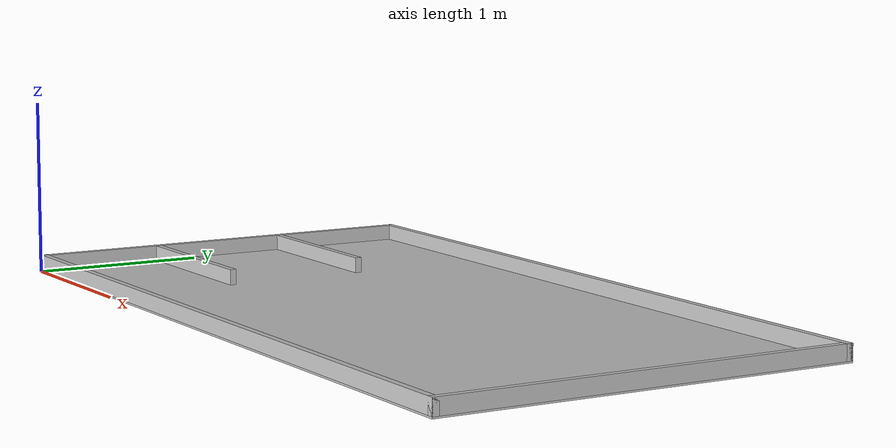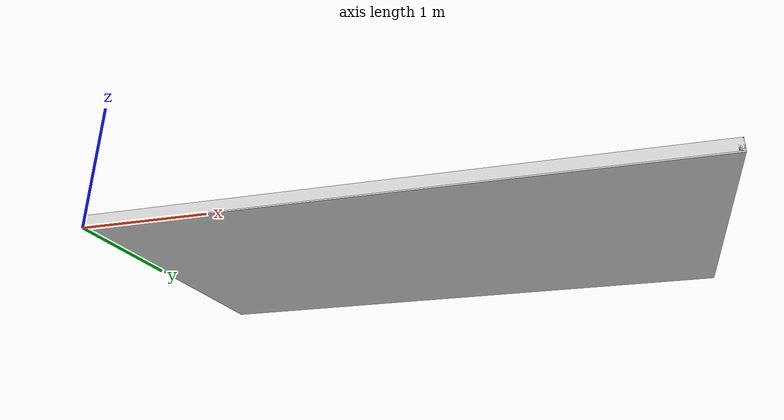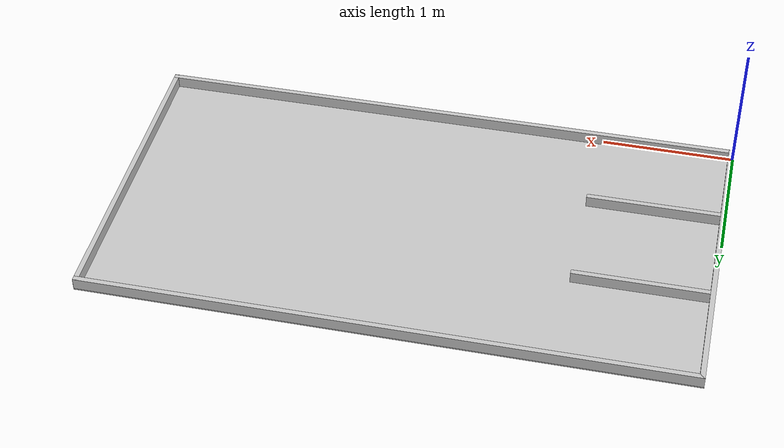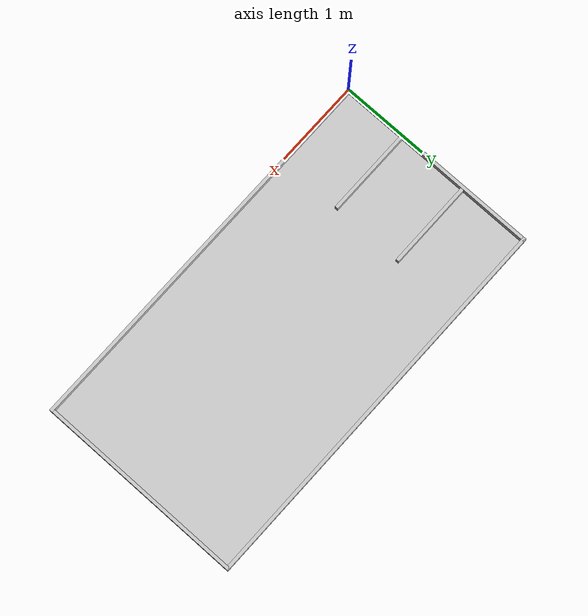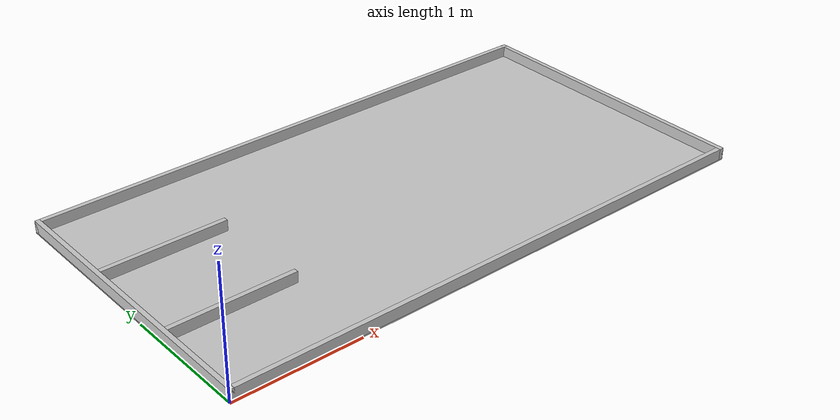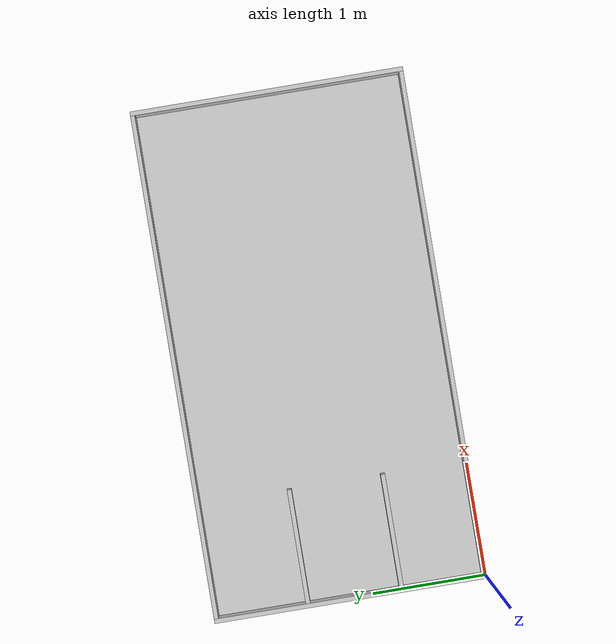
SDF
<sdf version="1.11">
  <model name="f3rc2026_map_v1">
    <link name="base_link">
      <inertial>
        <pose>2.1782688081191508 1.198407835694234 0.021384627678157742 0 0 0</pose>
        <mass>1267.26946</mass>
        <inertia>
          <ixx>811.46714336927425</ixx>
          <ixy>-3.30957234246398</ixy>
          <ixz>3.0102783715909349</ixz>
          <iyy>2622.6713184598962</iyy>
          <iyz>0.066816926472228033</iyz>
          <izz>3432.1953639819621</izz>
        </inertia>
      </inertial>
      <collision name="base_link_collision">
        <pose>0 0 0 0 0 0</pose>
        <geometry>
          <mesh>
            <scale>0.001 0.001 0.001</scale>
            <uri>meshes/base_link.stl</uri>
          </mesh>
        </geometry>
      </collision>
      <collision name="base_link_fixed_joint_lump__2400_v2_1_collision_1">
        <pose>0 0 0 0 0 0</pose>
        <geometry>
          <mesh>
            <scale>0.001 0.001 0.001</scale>
            <uri>meshes/2400_v2_1.stl</uri>
          </mesh>
        </geometry>
      </collision>
      <collision name="base_link_fixed_joint_lump__2400_v2_2_collision_2">
        <pose>0 0 0 0 0 0</pose>
        <geometry>
          <mesh>
            <scale>0.001 0.001 0.001</scale>
            <uri>meshes/2400_v2_2.stl</uri>
          </mesh>
        </geometry>
      </collision>
      <collision name="base_link_fixed_joint_lump__4500_v1_1_collision_3">
        <pose>0 0 0 0 0 0</pose>
        <geometry>
          <mesh>
            <scale>0.001 0.001 0.001</scale>
            <uri>meshes/4500_v1_1.stl</uri>
          </mesh>
        </geometry>
      </collision>
      <collision name="base_link_fixed_joint_lump__4500_v1_2_collision_4">
        <pose>0 0 0 0 0 0</pose>
        <geometry>
          <mesh>
            <scale>0.001 0.001 0.001</scale>
            <uri>meshes/4500_v1_2.stl</uri>
          </mesh>
        </geometry>
      </collision>
      <collision name="base_link_fixed_joint_lump__1000_v2_1_collision_5">
        <pose>0 0 0 0 0 0</pose>
        <geometry>
          <mesh>
            <scale>0.001 0.001 0.001</scale>
            <uri>meshes/1000_v2_1.stl</uri>
          </mesh>
        </geometry>
      </collision>
      <collision name="base_link_fixed_joint_lump__1000_v2_2_collision_6">
        <pose>0 0 0 0 0 0</pose>
        <geometry>
          <mesh>
            <scale>0.001 0.001 0.001</scale>
            <uri>meshes/1000_v2_2.stl</uri>
          </mesh>
        </geometry>
      </collision>
      <visual name="base_link_visual">
        <pose>0 0 0 0 0 0</pose>
        <geometry>
          <mesh>
            <scale>0.001 0.001 0.001</scale>
            <uri>meshes/base_link.stl</uri>
          </mesh>
        </geometry>
        <material>
          <diffuse>0.784313738 0.784313738 0.784313738 1</diffuse>
          <ambient>0.784313738 0.784313738 0.784313738 1</ambient>
        </material>
      </visual>
      <visual name="base_link_fixed_joint_lump__2400_v2_1_visual_1">
        <pose>0 0 0 0 0 0</pose>
        <geometry>
          <mesh>
            <scale>0.001 0.001 0.001</scale>
            <uri>meshes/2400_v2_1.stl</uri>
          </mesh>
        </geometry>
        <material>
          <diffuse>0.784313738 0.784313738 0.784313738 1</diffuse>
          <ambient>0.784313738 0.784313738 0.784313738 1</ambient>
        </material>
      </visual>
      <visual name="base_link_fixed_joint_lump__2400_v2_2_visual_2">
        <pose>0 0 0 0 0 0</pose>
        <geometry>
          <mesh>
            <scale>0.001 0.001 0.001</scale>
            <uri>meshes/2400_v2_2.stl</uri>
          </mesh>
        </geometry>
        <material>
          <diffuse>0.784313738 0.784313738 0.784313738 1</diffuse>
          <ambient>0.784313738 0.784313738 0.784313738 1</ambient>
        </material>
      </visual>
      <visual name="base_link_fixed_joint_lump__4500_v1_1_visual_3">
        <pose>0 0 0 0 0 0</pose>
        <geometry>
          <mesh>
            <scale>0.001 0.001 0.001</scale>
            <uri>meshes/4500_v1_1.stl</uri>
          </mesh>
        </geometry>
        <material>
          <diffuse>0.784313738 0.784313738 0.784313738 1</diffuse>
          <ambient>0.784313738 0.784313738 0.784313738 1</ambient>
        </material>
      </visual>
      <visual name="base_link_fixed_joint_lump__4500_v1_2_visual_4">
        <pose>0 0 0 0 0 0</pose>
        <geometry>
          <mesh>
            <scale>0.001 0.001 0.001</scale>
            <uri>meshes/4500_v1_2.stl</uri>
          </mesh>
        </geometry>
        <material>
          <diffuse>0.784313738 0.784313738 0.784313738 1</diffuse>
          <ambient>0.784313738 0.784313738 0.784313738 1</ambient>
        </material>
      </visual>
      <visual name="base_link_fixed_joint_lump__1000_v2_1_visual_5">
        <pose>0 0 0 0 0 0</pose>
        <geometry>
          <mesh>
            <scale>0.001 0.001 0.001</scale>
            <uri>meshes/1000_v2_1.stl</uri>
          </mesh>
        </geometry>
        <material>
          <diffuse>0.784313738 0.784313738 0.784313738 1</diffuse>
          <ambient>0.784313738 0.784313738 0.784313738 1</ambient>
        </material>
      </visual>
      <visual name="base_link_fixed_joint_lump__1000_v2_2_visual_6">
        <pose>0 0 0 0 0 0</pose>
        <geometry>
          <mesh>
            <scale>0.001 0.001 0.001</scale>
            <uri>meshes/1000_v2_2.stl</uri>
          </mesh>
        </geometry>
        <material>
          <diffuse>0.784313738 0.784313738 0.784313738 1</diffuse>
          <ambient>0.784313738 0.784313738 0.784313738 1</ambient>
        </material>
      </visual>
    </link>
    <plugin name="gz::sim::systems::PosePublisher" filename="libgz-sim-pose-publisher-system.so">
      <publish_link_pose>true</publish_link_pose>
      <publish_model_pose>true</publish_model_pose>
      <use_pose_vector_msg>true</use_pose_vector_msg>
      <update_frequency>50</update_frequency>
    </plugin>
    <frame name="fixed_joint_1" attached_to="base_link">
      <pose>4.4809999999999999 1.2 0.01 0 0 0</pose>
    </frame>
    <frame name="2400_v2_1" attached_to="fixed_joint_1">
      <pose>0 0 0 0 0 0</pose>
    </frame>
    <frame name="fixed_joint_2" attached_to="base_link">
      <pose>0.019 1.2 0.01 0 0 0</pose>
    </frame>
    <frame name="2400_v2_2" attached_to="fixed_joint_2">
      <pose>0 0 0 0 0 0</pose>
    </frame>
    <frame name="fixed_joint_3" attached_to="base_link">
      <pose>2.25 0.019 0.01 0 0 0</pose>
    </frame>
    <frame name="4500_v1_1" attached_to="fixed_joint_3">
      <pose>0 0 0 0 0 0</pose>
    </frame>
    <frame name="fixed_joint_4" attached_to="base_link">
      <pose>2.25 2.3809999999999998 0.01 0 0 0</pose>
    </frame>
    <frame name="4500_v1_2" attached_to="fixed_joint_4">
      <pose>0 0 0 0 0 0</pose>
    </frame>
    <frame name="fixed_joint_5" attached_to="base_link">
      <pose>0.53800000000000003 0.75 0.01 0 0 0</pose>
    </frame>
    <frame name="1000_v2_1" attached_to="fixed_joint_5">
      <pose>0 0 0 0 0 0</pose>
    </frame>
    <frame name="fixed_joint_6" attached_to="base_link">
      <pose>0.53800000000000003 1.5740000000000001 0.01 0 0 0</pose>
    </frame>
    <frame name="1000_v2_2" attached_to="fixed_joint_6">
      <pose>0 0 0 0 0 0</pose>
    </frame>
  </model>
</sdf>
